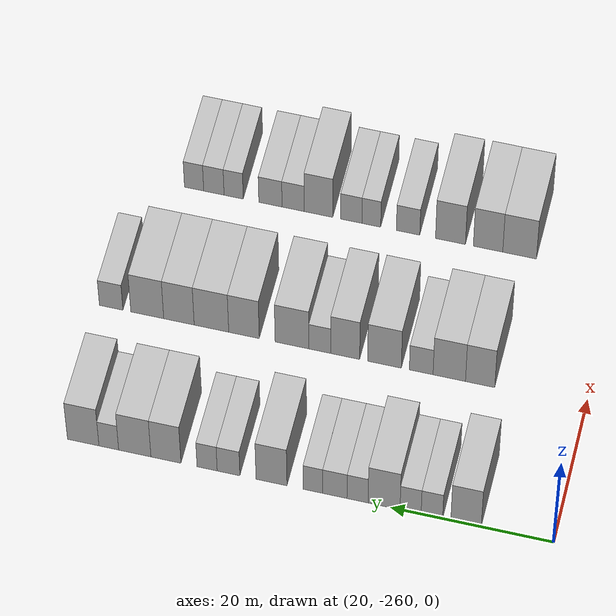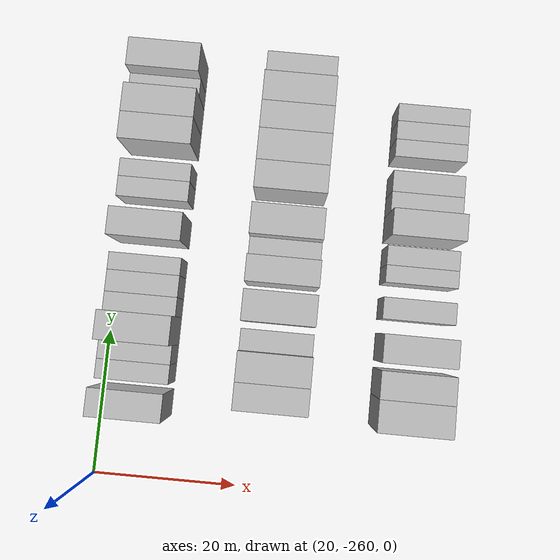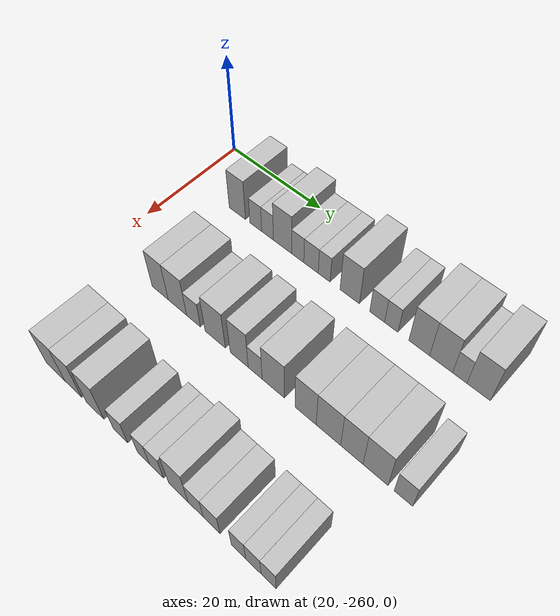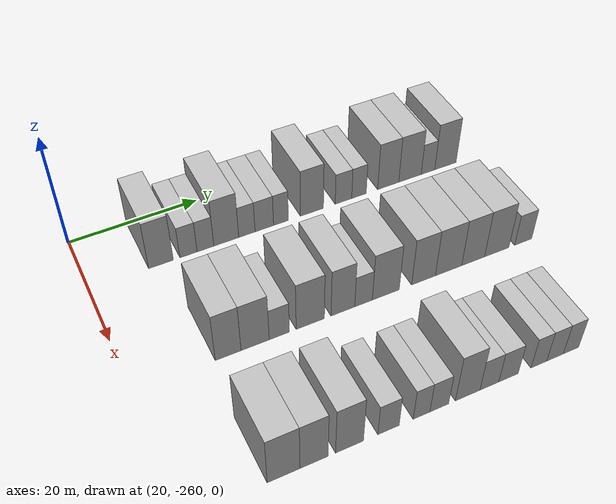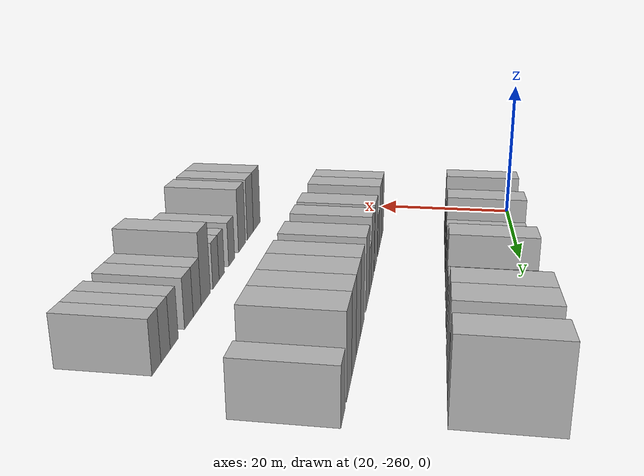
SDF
<sdf version="1.6">
 <world name="default">
  <model name="building_27">
   <static>1</static>
   <pose>25.0000 -249.2754 0 0.000000 0.000000 0.000000</pose>
   <link name="link">
    <pose>0 0 4.50 0 0 0</pose>
    <collision name="collision"><geometry><box><size>10.0000 3.7317 9.0000</size></box></geometry></collision>
    <visual name="visual">
     <cast_shadows>0</cast_shadows>
     <geometry><box><size>10.0000 3.7317 9.0000</size></box></geometry>
     <material>
      <script>
       <uri>model://HANNAS_wall/materials/scripts</uri>
       <uri>model://HANNAS_wall/materials/textures</uri>
       <name>vrc/HANNAS_wall</name>
      </script>
     </material>
    </visual>
   </link>
  </model>
  <model name="building_28">
   <static>1</static>
   <pose>25.0000 -245.0887 0 0.000000 0.000000 0.000000</pose>
   <link name="link">
    <pose>0 0 3.00 0 0 0</pose>
    <collision name="collision"><geometry><box><size>10.0000 2.6416 6.0000</size></box></geometry></collision>
    <visual name="visual">
     <cast_shadows>0</cast_shadows>
     <geometry><box><size>10.0000 2.6416 6.0000</size></box></geometry>
     <material>
      <script>
       <uri>model://HANNAS_wall/materials/scripts</uri>
       <uri>model://HANNAS_wall/materials/textures</uri>
       <name>vrc/HANNAS_wall</name>
      </script>
     </material>
    </visual>
   </link>
  </model>
  <model name="building_29">
   <static>1</static>
   <pose>25.0000 -242.4724 0 0.000000 0.000000 0.000000</pose>
   <link name="link">
    <pose>0 0 3.00 0 0 0</pose>
    <collision name="collision"><geometry><box><size>10.0000 2.5910 6.0000</size></box></geometry></collision>
    <visual name="visual">
     <cast_shadows>0</cast_shadows>
     <geometry><box><size>10.0000 2.5910 6.0000</size></box></geometry>
     <material>
      <script>
       <uri>model://HANNAS_wall/materials/scripts</uri>
       <uri>model://HANNAS_wall/materials/textures</uri>
       <name>vrc/HANNAS_wall</name>
      </script>
     </material>
    </visual>
   </link>
  </model>
  <model name="building_30">
   <static>1</static>
   <pose>25.0000 -239.2148 0 0.000000 0.000000 0.000000</pose>
   <link name="link">
    <pose>0 0 4.50 0 0 0</pose>
    <collision name="collision"><geometry><box><size>10.0000 3.9242 9.0000</size></box></geometry></collision>
    <visual name="visual">
     <cast_shadows>0</cast_shadows>
     <geometry><box><size>10.0000 3.9242 9.0000</size></box></geometry>
     <material>
      <script>
       <uri>model://HANNAS_wall/materials/scripts</uri>
       <uri>model://HANNAS_wall/materials/textures</uri>
       <name>vrc/HANNAS_wall</name>
      </script>
     </material>
    </visual>
   </link>
  </model>
  <model name="building_31">
   <static>1</static>
   <pose>25.0000 -235.9470 0 0.000000 0.000000 0.000000</pose>
   <link name="link">
    <pose>0 0 3.00 0 0 0</pose>
    <collision name="collision"><geometry><box><size>10.0000 2.6115 6.0000</size></box></geometry></collision>
    <visual name="visual">
     <cast_shadows>0</cast_shadows>
     <geometry><box><size>10.0000 2.6115 6.0000</size></box></geometry>
     <material>
      <script>
       <uri>model://HANNAS_wall/materials/scripts</uri>
       <uri>model://HANNAS_wall/materials/textures</uri>
       <name>vrc/HANNAS_wall</name>
      </script>
     </material>
    </visual>
   </link>
  </model>
  <model name="building_32">
   <static>1</static>
   <pose>25.0000 -233.1449 0 0.000000 0.000000 0.000000</pose>
   <link name="link">
    <pose>0 0 3.00 0 0 0</pose>
    <collision name="collision"><geometry><box><size>10.0000 2.9928 6.0000</size></box></geometry></collision>
    <visual name="visual">
     <cast_shadows>0</cast_shadows>
     <geometry><box><size>10.0000 2.9928 6.0000</size></box></geometry>
     <material>
      <script>
       <uri>model://HANNAS_wall/materials/scripts</uri>
       <uri>model://HANNAS_wall/materials/textures</uri>
       <name>vrc/HANNAS_wall</name>
      </script>
     </material>
    </visual>
   </link>
  </model>
  <model name="building_33">
   <static>1</static>
   <pose>25.0000 -230.4417 0 0.000000 0.000000 0.000000</pose>
   <link name="link">
    <pose>0 0 3.00 0 0 0</pose>
    <collision name="collision"><geometry><box><size>10.0000 2.4134 6.0000</size></box></geometry></collision>
    <visual name="visual">
     <cast_shadows>0</cast_shadows>
     <geometry><box><size>10.0000 2.4134 6.0000</size></box></geometry>
     <material>
      <script>
       <uri>model://HANNAS_wall/materials/scripts</uri>
       <uri>model://HANNAS_wall/materials/textures</uri>
       <name>vrc/HANNAS_wall</name>
      </script>
     </material>
    </visual>
   </link>
  </model>
  <model name="building_34">
   <static>1</static>
   <pose>25.0000 -225.3167 0 0.000000 0.000000 0.000000</pose>
   <link name="link">
    <pose>0 0 4.50 0 0 0</pose>
    <collision name="collision"><geometry><box><size>10.0000 3.8365 9.0000</size></box></geometry></collision>
    <visual name="visual">
     <cast_shadows>0</cast_shadows>
     <geometry><box><size>10.0000 3.8365 9.0000</size></box></geometry>
     <material>
      <script>
       <uri>model://HANNAS_wall/materials/scripts</uri>
       <uri>model://HANNAS_wall/materials/textures</uri>
       <name>vrc/HANNAS_wall</name>
      </script>
     </material>
    </visual>
   </link>
  </model>
  <model name="building_35">
   <static>1</static>
   <pose>25.0000 -219.9875 0 0.000000 0.000000 0.000000</pose>
   <link name="link">
    <pose>0 0 3.00 0 0 0</pose>
    <collision name="collision"><geometry><box><size>10.0000 2.8219 6.0000</size></box></geometry></collision>
    <visual name="visual">
     <cast_shadows>0</cast_shadows>
     <geometry><box><size>10.0000 2.8219 6.0000</size></box></geometry>
     <material>
      <script>
       <uri>model://HANNAS_wall/materials/scripts</uri>
       <uri>model://HANNAS_wall/materials/textures</uri>
       <name>vrc/HANNAS_wall</name>
      </script>
     </material>
    </visual>
   </link>
  </model>
  <model name="building_36">
   <static>1</static>
   <pose>25.0000 -217.3249 0 0.000000 0.000000 0.000000</pose>
   <link name="link">
    <pose>0 0 3.00 0 0 0</pose>
    <collision name="collision"><geometry><box><size>10.0000 2.5034 6.0000</size></box></geometry></collision>
    <visual name="visual">
     <cast_shadows>0</cast_shadows>
     <geometry><box><size>10.0000 2.5034 6.0000</size></box></geometry>
     <material>
      <script>
       <uri>model://HANNAS_wall/materials/scripts</uri>
       <uri>model://HANNAS_wall/materials/textures</uri>
       <name>vrc/HANNAS_wall</name>
      </script>
     </material>
    </visual>
   </link>
  </model>
  <model name="building_37">
   <static>1</static>
   <pose>25.0000 -212.2040 0 0.000000 0.000000 0.000000</pose>
   <link name="link">
    <pose>0 0 4.50 0 0 0</pose>
    <collision name="collision"><geometry><box><size>10.0000 3.7382 9.0000</size></box></geometry></collision>
    <visual name="visual">
     <cast_shadows>0</cast_shadows>
     <geometry><box><size>10.0000 3.7382 9.0000</size></box></geometry>
     <material>
      <script>
       <uri>model://HANNAS_wall/materials/scripts</uri>
       <uri>model://HANNAS_wall/materials/textures</uri>
       <name>vrc/HANNAS_wall</name>
      </script>
     </material>
    </visual>
   </link>
  </model>
  <model name="building_38">
   <static>1</static>
   <pose>25.0000 -208.3201 0 0.000000 0.000000 0.000000</pose>
   <link name="link">
    <pose>0 0 4.50 0 0 0</pose>
    <collision name="collision"><geometry><box><size>10.0000 4.0297 9.0000</size></box></geometry></collision>
    <visual name="visual">
     <cast_shadows>0</cast_shadows>
     <geometry><box><size>10.0000 4.0297 9.0000</size></box></geometry>
     <material>
      <script>
       <uri>model://HANNAS_wall/materials/scripts</uri>
       <uri>model://HANNAS_wall/materials/textures</uri>
       <name>vrc/HANNAS_wall</name>
      </script>
     </material>
    </visual>
   </link>
  </model>
  <model name="building_39">
   <static>1</static>
   <pose>25.0000 -205.0746 0 0.000000 0.000000 0.000000</pose>
   <link name="link">
    <pose>0 0 3.00 0 0 0</pose>
    <collision name="collision"><geometry><box><size>10.0000 2.4613 6.0000</size></box></geometry></collision>
    <visual name="visual">
     <cast_shadows>0</cast_shadows>
     <geometry><box><size>10.0000 2.4613 6.0000</size></box></geometry>
     <material>
      <script>
       <uri>model://HANNAS_wall/materials/scripts</uri>
       <uri>model://HANNAS_wall/materials/textures</uri>
       <name>vrc/HANNAS_wall</name>
      </script>
     </material>
    </visual>
   </link>
  </model>
  <model name="building_40">
   <static>1</static>
   <pose>25.0000 -201.8766 0 0.000000 0.000000 0.000000</pose>
   <link name="link">
    <pose>0 0 4.50 0 0 0</pose>
    <collision name="collision"><geometry><box><size>10.0000 3.9346 9.0000</size></box></geometry></collision>
    <visual name="visual">
     <cast_shadows>0</cast_shadows>
     <geometry><box><size>10.0000 3.9346 9.0000</size></box></geometry>
     <material>
      <script>
       <uri>model://HANNAS_wall/materials/scripts</uri>
       <uri>model://HANNAS_wall/materials/textures</uri>
       <name>vrc/HANNAS_wall</name>
      </script>
     </material>
    </visual>
   </link>
  </model>
  <model name="building_202">
   <static>1</static>
   <pose>44.0000 -246.7965 0 0.000000 0.000000 0.000000</pose>
   <link name="link">
    <pose>0 0 4.50 0 0 0</pose>
    <collision name="collision"><geometry><box><size>10.0000 3.6522 9.0000</size></box></geometry></collision>
    <visual name="visual">
     <cast_shadows>0</cast_shadows>
     <geometry><box><size>10.0000 3.6522 9.0000</size></box></geometry>
     <material>
      <script>
       <uri>model://HANNAS_wall/materials/scripts</uri>
       <uri>model://HANNAS_wall/materials/textures</uri>
       <name>vrc/HANNAS_wall</name>
      </script>
     </material>
    </visual>
   </link>
  </model>
  <model name="building_203">
   <static>1</static>
   <pose>44.0000 -242.9457 0 0.000000 0.000000 0.000000</pose>
   <link name="link">
    <pose>0 0 4.50 0 0 0</pose>
    <collision name="collision"><geometry><box><size>10.0000 4.0494 9.0000</size></box></geometry></collision>
    <visual name="visual">
     <cast_shadows>0</cast_shadows>
     <geometry><box><size>10.0000 4.0494 9.0000</size></box></geometry>
     <material>
      <script>
       <uri>model://HANNAS_wall/materials/scripts</uri>
       <uri>model://HANNAS_wall/materials/textures</uri>
       <name>vrc/HANNAS_wall</name>
      </script>
     </material>
    </visual>
   </link>
  </model>
  <model name="building_204">
   <static>1</static>
   <pose>44.0000 -239.4371 0 0.000000 0.000000 0.000000</pose>
   <link name="link">
    <pose>0 0 3.00 0 0 0</pose>
    <collision name="collision"><geometry><box><size>10.0000 2.9678 6.0000</size></box></geometry></collision>
    <visual name="visual">
     <cast_shadows>0</cast_shadows>
     <geometry><box><size>10.0000 2.9678 6.0000</size></box></geometry>
     <material>
      <script>
       <uri>model://HANNAS_wall/materials/scripts</uri>
       <uri>model://HANNAS_wall/materials/textures</uri>
       <name>vrc/HANNAS_wall</name>
      </script>
     </material>
    </visual>
   </link>
  </model>
  <model name="building_205">
   <static>1</static>
   <pose>44.0000 -234.8391 0 0.000000 0.000000 0.000000</pose>
   <link name="link">
    <pose>0 0 4.50 0 0 0</pose>
    <collision name="collision"><geometry><box><size>10.0000 4.2283 9.0000</size></box></geometry></collision>
    <visual name="visual">
     <cast_shadows>0</cast_shadows>
     <geometry><box><size>10.0000 4.2283 9.0000</size></box></geometry>
     <material>
      <script>
       <uri>model://HANNAS_wall/materials/scripts</uri>
       <uri>model://HANNAS_wall/materials/textures</uri>
       <name>vrc/HANNAS_wall</name>
      </script>
     </material>
    </visual>
   </link>
  </model>
  <model name="building_206">
   <static>1</static>
   <pose>44.0000 -229.9045 0 0.000000 0.000000 0.000000</pose>
   <link name="link">
    <pose>0 0 4.50 0 0 0</pose>
    <collision name="collision"><geometry><box><size>10.0000 3.6408 9.0000</size></box></geometry></collision>
    <visual name="visual">
     <cast_shadows>0</cast_shadows>
     <geometry><box><size>10.0000 3.6408 9.0000</size></box></geometry>
     <material>
      <script>
       <uri>model://HANNAS_wall/materials/scripts</uri>
       <uri>model://HANNAS_wall/materials/textures</uri>
       <name>vrc/HANNAS_wall</name>
      </script>
     </material>
    </visual>
   </link>
  </model>
  <model name="building_207">
   <static>1</static>
   <pose>44.0000 -226.7147 0 0.000000 0.000000 0.000000</pose>
   <link name="link">
    <pose>0 0 3.00 0 0 0</pose>
    <collision name="collision"><geometry><box><size>10.0000 2.7388 6.0000</size></box></geometry></collision>
    <visual name="visual">
     <cast_shadows>0</cast_shadows>
     <geometry><box><size>10.0000 2.7388 6.0000</size></box></geometry>
     <material>
      <script>
       <uri>model://HANNAS_wall/materials/scripts</uri>
       <uri>model://HANNAS_wall/materials/textures</uri>
       <name>vrc/HANNAS_wall</name>
      </script>
     </material>
    </visual>
   </link>
  </model>
  <model name="building_208">
   <static>1</static>
   <pose>44.0000 -223.2158 0 0.000000 0.000000 0.000000</pose>
   <link name="link">
    <pose>0 0 4.50 0 0 0</pose>
    <collision name="collision"><geometry><box><size>10.0000 4.2590 9.0000</size></box></geometry></collision>
    <visual name="visual">
     <cast_shadows>0</cast_shadows>
     <geometry><box><size>10.0000 4.2590 9.0000</size></box></geometry>
     <material>
      <script>
       <uri>model://HANNAS_wall/materials/scripts</uri>
       <uri>model://HANNAS_wall/materials/textures</uri>
       <name>vrc/HANNAS_wall</name>
      </script>
     </material>
    </visual>
   </link>
  </model>
  <model name="building_209">
   <static>1</static>
   <pose>44.0000 -217.1549 0 0.000000 0.000000 0.000000</pose>
   <link name="link">
    <pose>0 0 4.50 0 0 0</pose>
    <collision name="collision"><geometry><box><size>10.0000 3.8627 9.0000</size></box></geometry></collision>
    <visual name="visual">
     <cast_shadows>0</cast_shadows>
     <geometry><box><size>10.0000 3.8627 9.0000</size></box></geometry>
     <material>
      <script>
       <uri>model://HANNAS_wall/materials/scripts</uri>
       <uri>model://HANNAS_wall/materials/textures</uri>
       <name>vrc/HANNAS_wall</name>
      </script>
     </material>
    </visual>
   </link>
  </model>
  <model name="building_210">
   <static>1</static>
   <pose>44.0000 -213.0387 0 0.000000 0.000000 0.000000</pose>
   <link name="link">
    <pose>0 0 4.50 0 0 0</pose>
    <collision name="collision"><geometry><box><size>10.0000 4.3696 9.0000</size></box></geometry></collision>
    <visual name="visual">
     <cast_shadows>0</cast_shadows>
     <geometry><box><size>10.0000 4.3696 9.0000</size></box></geometry>
     <material>
      <script>
       <uri>model://HANNAS_wall/materials/scripts</uri>
       <uri>model://HANNAS_wall/materials/textures</uri>
       <name>vrc/HANNAS_wall</name>
      </script>
     </material>
    </visual>
   </link>
  </model>
  <model name="building_211">
   <static>1</static>
   <pose>44.0000 -208.9217 0 0.000000 0.000000 0.000000</pose>
   <link name="link">
    <pose>0 0 4.50 0 0 0</pose>
    <collision name="collision"><geometry><box><size>10.0000 3.8645 9.0000</size></box></geometry></collision>
    <visual name="visual">
     <cast_shadows>0</cast_shadows>
     <geometry><box><size>10.0000 3.8645 9.0000</size></box></geometry>
     <material>
      <script>
       <uri>model://HANNAS_wall/materials/scripts</uri>
       <uri>model://HANNAS_wall/materials/textures</uri>
       <name>vrc/HANNAS_wall</name>
      </script>
     </material>
    </visual>
   </link>
  </model>
  <model name="building_212">
   <static>1</static>
   <pose>44.0000 -204.8992 0 0.000000 0.000000 0.000000</pose>
   <link name="link">
    <pose>0 0 4.50 0 0 0</pose>
    <collision name="collision"><geometry><box><size>10.0000 4.1804 9.0000</size></box></geometry></collision>
    <visual name="visual">
     <cast_shadows>0</cast_shadows>
     <geometry><box><size>10.0000 4.1804 9.0000</size></box></geometry>
     <material>
      <script>
       <uri>model://HANNAS_wall/materials/scripts</uri>
       <uri>model://HANNAS_wall/materials/textures</uri>
       <name>vrc/HANNAS_wall</name>
      </script>
     </material>
    </visual>
   </link>
  </model>
  <model name="building_213">
   <static>1</static>
   <pose>44.0000 -200.3142 0 0.000000 0.000000 0.000000</pose>
   <link name="link">
    <pose>0 0 3.00 0 0 0</pose>
    <collision name="collision"><geometry><box><size>10.0000 2.9898 6.0000</size></box></geometry></collision>
    <visual name="visual">
     <cast_shadows>0</cast_shadows>
     <geometry><box><size>10.0000 2.9898 6.0000</size></box></geometry>
     <material>
      <script>
       <uri>model://HANNAS_wall/materials/scripts</uri>
       <uri>model://HANNAS_wall/materials/textures</uri>
       <name>vrc/HANNAS_wall</name>
      </script>
     </material>
    </visual>
   </link>
  </model>
  <model name="building_367">
   <static>1</static>
   <pose>63.0000 -247.5992 0 0.000000 0.000000 0.000000</pose>
   <link name="link">
    <pose>0 0 4.50 0 0 0</pose>
    <collision name="collision"><geometry><box><size>10.0000 4.2752 9.0000</size></box></geometry></collision>
    <visual name="visual">
     <cast_shadows>0</cast_shadows>
     <geometry><box><size>10.0000 4.2752 9.0000</size></box></geometry>
     <material>
      <script>
       <uri>model://HANNAS_wall/materials/scripts</uri>
       <uri>model://HANNAS_wall/materials/textures</uri>
       <name>vrc/HANNAS_wall</name>
      </script>
     </material>
    </visual>
   </link>
  </model>
  <model name="building_368">
   <static>1</static>
   <pose>63.0000 -243.5945 0 0.000000 0.000000 0.000000</pose>
   <link name="link">
    <pose>0 0 4.50 0 0 0</pose>
    <collision name="collision"><geometry><box><size>10.0000 3.7342 9.0000</size></box></geometry></collision>
    <visual name="visual">
     <cast_shadows>0</cast_shadows>
     <geometry><box><size>10.0000 3.7342 9.0000</size></box></geometry>
     <material>
      <script>
       <uri>model://HANNAS_wall/materials/scripts</uri>
       <uri>model://HANNAS_wall/materials/textures</uri>
       <name>vrc/HANNAS_wall</name>
      </script>
     </material>
    </visual>
   </link>
  </model>
  <model name="building_369">
   <static>1</static>
   <pose>63.0000 -238.8226 0 0.000000 0.000000 0.000000</pose>
   <link name="link">
    <pose>0 0 4.50 0 0 0</pose>
    <collision name="collision"><geometry><box><size>10.0000 3.8095 9.0000</size></box></geometry></collision>
    <visual name="visual">
     <cast_shadows>0</cast_shadows>
     <geometry><box><size>10.0000 3.8095 9.0000</size></box></geometry>
     <material>
      <script>
       <uri>model://HANNAS_wall/materials/scripts</uri>
       <uri>model://HANNAS_wall/materials/textures</uri>
       <name>vrc/HANNAS_wall</name>
      </script>
     </material>
    </visual>
   </link>
  </model>
  <model name="building_370">
   <static>1</static>
   <pose>63.0000 -233.4251 0 0.000000 0.000000 0.000000</pose>
   <link name="link">
    <pose>0 0 3.00 0 0 0</pose>
    <collision name="collision"><geometry><box><size>10.0000 2.9855 6.0000</size></box></geometry></collision>
    <visual name="visual">
     <cast_shadows>0</cast_shadows>
     <geometry><box><size>10.0000 2.9855 6.0000</size></box></geometry>
     <material>
      <script>
       <uri>model://HANNAS_wall/materials/scripts</uri>
       <uri>model://HANNAS_wall/materials/textures</uri>
       <name>vrc/HANNAS_wall</name>
      </script>
     </material>
    </visual>
   </link>
  </model>
  <model name="building_371">
   <static>1</static>
   <pose>63.0000 -228.7287 0 0.000000 0.000000 0.000000</pose>
   <link name="link">
    <pose>0 0 3.00 0 0 0</pose>
    <collision name="collision"><geometry><box><size>10.0000 2.4073 6.0000</size></box></geometry></collision>
    <visual name="visual">
     <cast_shadows>0</cast_shadows>
     <geometry><box><size>10.0000 2.4073 6.0000</size></box></geometry>
     <material>
      <script>
       <uri>model://HANNAS_wall/materials/scripts</uri>
       <uri>model://HANNAS_wall/materials/textures</uri>
       <name>vrc/HANNAS_wall</name>
      </script>
     </material>
    </visual>
   </link>
  </model>
  <model name="building_372">
   <static>1</static>
   <pose>63.0000 -226.1645 0 0.000000 0.000000 0.000000</pose>
   <link name="link">
    <pose>0 0 3.00 0 0 0</pose>
    <collision name="collision"><geometry><box><size>10.0000 2.7211 6.0000</size></box></geometry></collision>
    <visual name="visual">
     <cast_shadows>0</cast_shadows>
     <geometry><box><size>10.0000 2.7211 6.0000</size></box></geometry>
     <material>
      <script>
       <uri>model://HANNAS_wall/materials/scripts</uri>
       <uri>model://HANNAS_wall/materials/textures</uri>
       <name>vrc/HANNAS_wall</name>
      </script>
     </material>
    </visual>
   </link>
  </model>
  <model name="building_373">
   <static>1</static>
   <pose>63.0000 -221.9766 0 0.000000 0.000000 0.000000</pose>
   <link name="link">
    <pose>0 0 4.50 0 0 0</pose>
    <collision name="collision"><geometry><box><size>10.0000 3.6547 9.0000</size></box></geometry></collision>
    <visual name="visual">
     <cast_shadows>0</cast_shadows>
     <geometry><box><size>10.0000 3.6547 9.0000</size></box></geometry>
     <material>
      <script>
       <uri>model://HANNAS_wall/materials/scripts</uri>
       <uri>model://HANNAS_wall/materials/textures</uri>
       <name>vrc/HANNAS_wall</name>
      </script>
     </material>
    </visual>
   </link>
  </model>
  <model name="building_374">
   <static>1</static>
   <pose>63.0000 -218.7250 0 0.000000 0.000000 0.000000</pose>
   <link name="link">
    <pose>0 0 3.00 0 0 0</pose>
    <collision name="collision"><geometry><box><size>10.0000 2.8484 6.0000</size></box></geometry></collision>
    <visual name="visual">
     <cast_shadows>0</cast_shadows>
     <geometry><box><size>10.0000 2.8484 6.0000</size></box></geometry>
     <material>
      <script>
       <uri>model://HANNAS_wall/materials/scripts</uri>
       <uri>model://HANNAS_wall/materials/textures</uri>
       <name>vrc/HANNAS_wall</name>
      </script>
     </material>
    </visual>
   </link>
  </model>
  <model name="building_375">
   <static>1</static>
   <pose>63.0000 -215.8067 0 0.000000 0.000000 0.000000</pose>
   <link name="link">
    <pose>0 0 3.00 0 0 0</pose>
    <collision name="collision"><geometry><box><size>10.0000 2.9884 6.0000</size></box></geometry></collision>
    <visual name="visual">
     <cast_shadows>0</cast_shadows>
     <geometry><box><size>10.0000 2.9884 6.0000</size></box></geometry>
     <material>
      <script>
       <uri>model://HANNAS_wall/materials/scripts</uri>
       <uri>model://HANNAS_wall/materials/textures</uri>
       <name>vrc/HANNAS_wall</name>
      </script>
     </material>
    </visual>
   </link>
  </model>
  <model name="building_376">
   <static>1</static>
   <pose>63.0000 -211.0759 0 0.000000 0.000000 0.000000</pose>
   <link name="link">
    <pose>0 0 3.00 0 0 0</pose>
    <collision name="collision"><geometry><box><size>10.0000 2.4731 6.0000</size></box></geometry></collision>
    <visual name="visual">
     <cast_shadows>0</cast_shadows>
     <geometry><box><size>10.0000 2.4731 6.0000</size></box></geometry>
     <material>
      <script>
       <uri>model://HANNAS_wall/materials/scripts</uri>
       <uri>model://HANNAS_wall/materials/textures</uri>
       <name>vrc/HANNAS_wall</name>
      </script>
     </material>
    </visual>
   </link>
  </model>
  <model name="building_377">
   <static>1</static>
   <pose>63.0000 -208.5263 0 0.000000 0.000000 0.000000</pose>
   <link name="link">
    <pose>0 0 3.00 0 0 0</pose>
    <collision name="collision"><geometry><box><size>10.0000 2.6262 6.0000</size></box></geometry></collision>
    <visual name="visual">
     <cast_shadows>0</cast_shadows>
     <geometry><box><size>10.0000 2.6262 6.0000</size></box></geometry>
     <material>
      <script>
       <uri>model://HANNAS_wall/materials/scripts</uri>
       <uri>model://HANNAS_wall/materials/textures</uri>
       <name>vrc/HANNAS_wall</name>
      </script>
     </material>
    </visual>
   </link>
  </model>
  <model name="building_378">
   <static>1</static>
   <pose>63.0000 -205.9750 0 0.000000 0.000000 0.000000</pose>
   <link name="link">
    <pose>0 0 3.00 0 0 0</pose>
    <collision name="collision"><geometry><box><size>10.0000 2.4762 6.0000</size></box></geometry></collision>
    <visual name="visual">
     <cast_shadows>0</cast_shadows>
     <geometry><box><size>10.0000 2.4762 6.0000</size></box></geometry>
     <material>
      <script>
       <uri>model://HANNAS_wall/materials/scripts</uri>
       <uri>model://HANNAS_wall/materials/textures</uri>
       <name>vrc/HANNAS_wall</name>
      </script>
     </material>
    </visual>
   </link>
  </model>
 </world>
</sdf>
